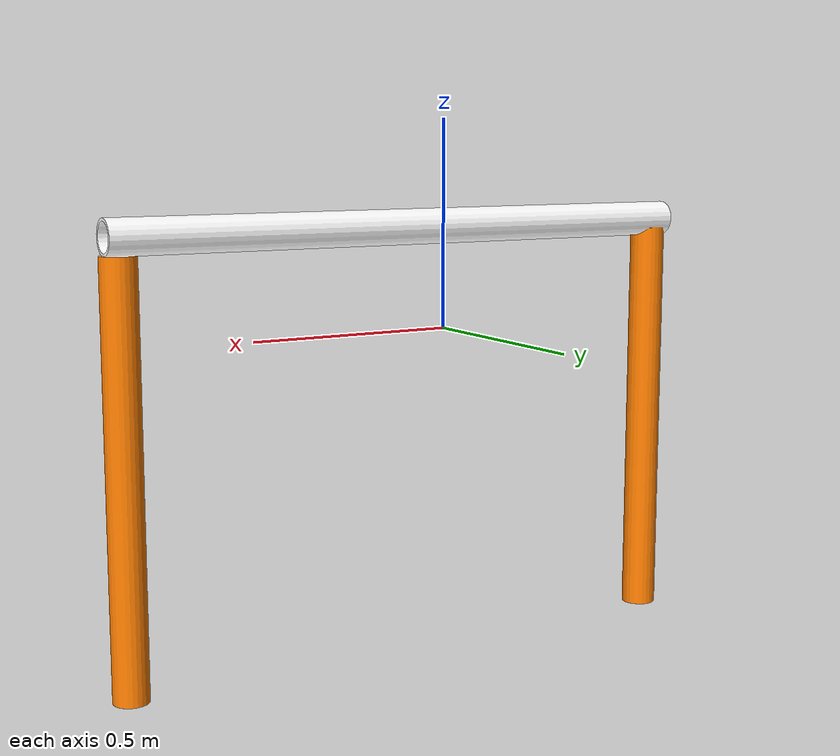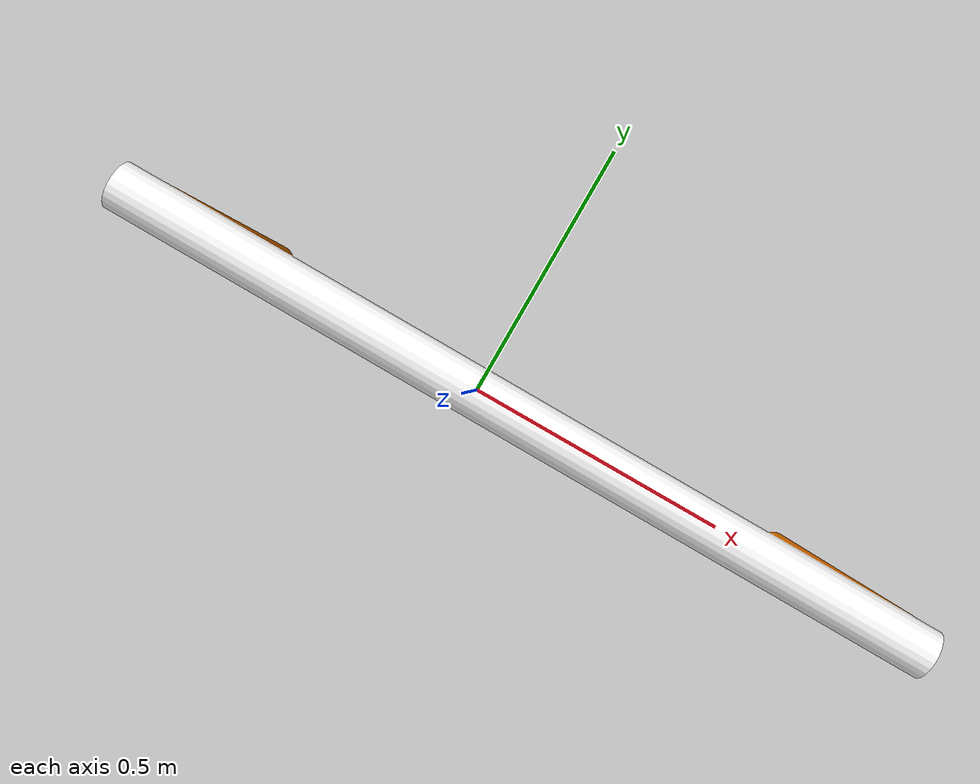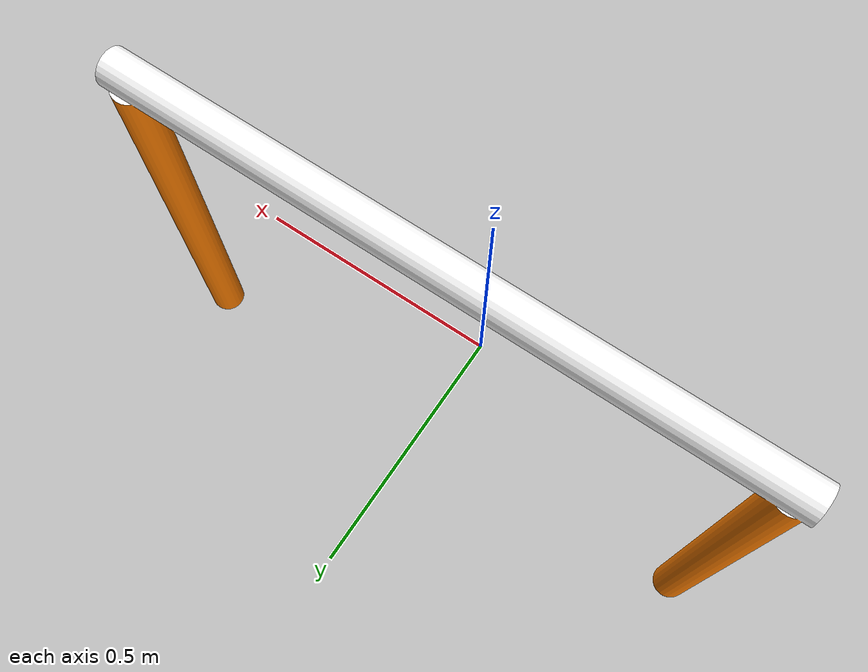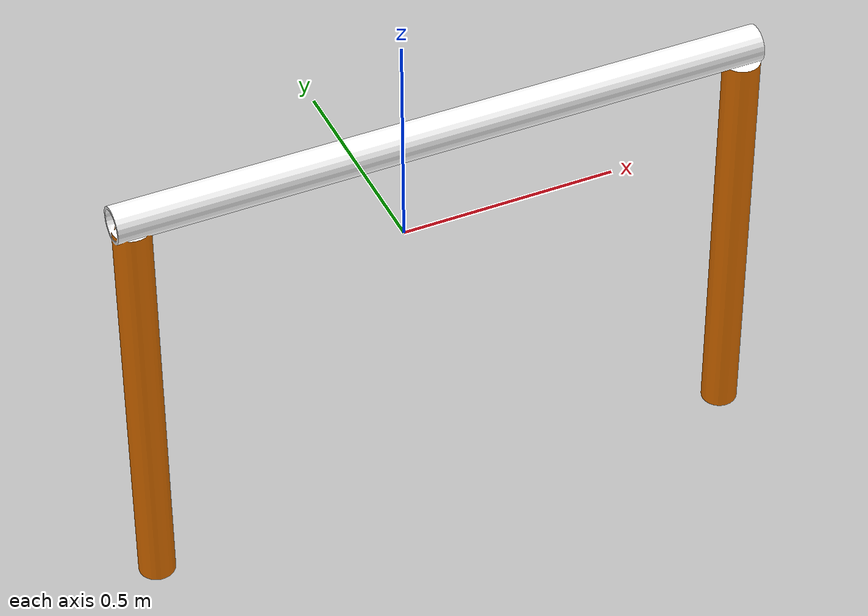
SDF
<?xml version="1.0" ?>
<sdf version="1.5">
  <model name="Qualification Gate">
    <static>0</static>
    <link name="link">
      <inertial>
        <pose>0.03 0.0 0.0035 0.0 0.0 0.0</pose>
        <mass> 3.0 </mass>
        <inertia>
          <ixx> 0.02734269</ixx>
          <ixy> 0.0 </ixy>
          <ixz> 0.0 </ixz>
          <iyy> 0.02734269 </iyy>
          <iyz> 0.0 </iyz>
          <izz> 0.00622998 </izz>
        </inertia>
      </inertial>
      <collision name="collision">
        <geometry>
          <mesh>
            <uri>model://qualification_gate/meshes/gate.dae</uri>
          </mesh>
        </geometry>
      </collision>
      <visual name="visual">
        <geometry>
          <mesh>
            <uri>model://qualification_gate/meshes/gate.dae</uri>
          </mesh>
        </geometry>
      </visual>
    </link>
  </model>
</sdf>
